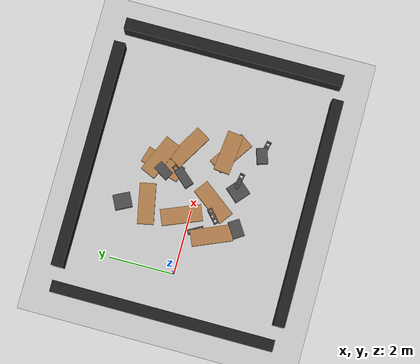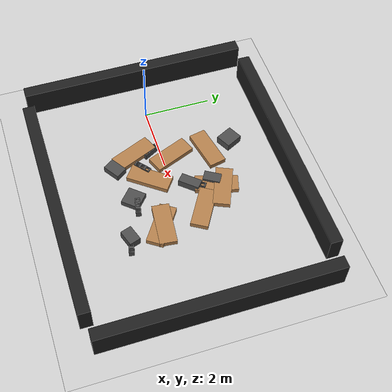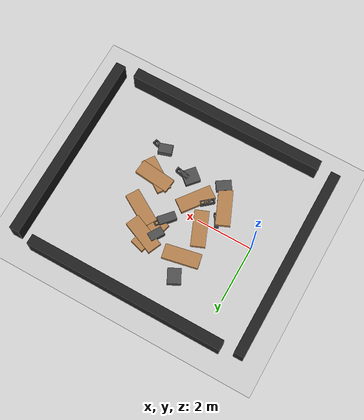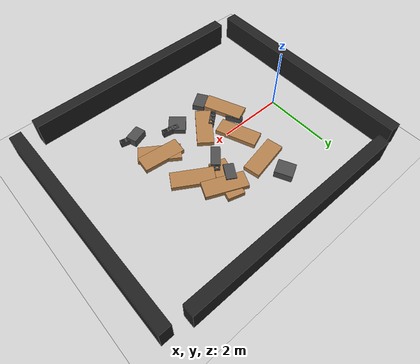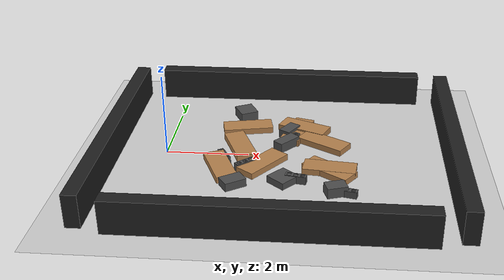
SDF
<sdf version="1.6">
 <world name="default">
  <plugin name="xbot2_clock" filename="libxbot2_gz_clock.so"/>
  <gravity>0 0 -9.81</gravity>
  <model name="ground_plane">
   <static>1</static>
   <link name="link">
    <collision name="collision">
     <geometry><plane><normal>0 0 1</normal><size>100 100</size></plane></geometry>
     <surface><friction><ode><mu>1</mu><mu2>1</mu2></ode></friction></surface>
    </collision>
    <visual name="visual">
     <cast_shadows>0</cast_shadows>
     <geometry><plane><normal>0 0 1</normal><size>100 100</size></plane></geometry>
     <material>
      <script><uri>file://media/materials/scripts/gazebo.material</uri><name>Gazebo/Grey</name></script>
     </material>
    </visual>
   </link>
  </model>
  <light name="sun" type="directional">
   <pose>0 0 10 0 -0 0</pose>
   <diffuse>0.8 0.8 0.8 1</diffuse>
   <specular>0.2 0.2 0.2 1</specular>
   <attenuation>
    <range>1000</range>
    <constant>0.9</constant>
    <linear>0.01</linear>
    <quadratic>0.001</quadratic>
   </attenuation>
   <direction>-0.5 0.1 -0.9</direction>
  </light>
  <physics name="update_rate" default="0" type="ode">
   <real_time_update_rate>4000</real_time_update_rate>
   <max_step_size>0.00025</max_step_size>
   <max_contacts>5</max_contacts>
   <bullet>
    <solver><iters>100</iters><sor>1.55</sor><type>sequential_impulse</type></solver>
    <constraints>
     <contact_surface_layer>0.2</contact_surface_layer>
     <cfm>0.005</cfm>
     <erp>0.2</erp>
     <split_impulse>1</split_impulse>
     <split_impulse_penetration_threshold>-0.01</split_impulse_penetration_threshold>
    </constraints>
   </bullet>
   <ode>
    <solver>
     <iters>50</iters>
     <sor>1.2</sor>
     <type>quick</type>
     <use_dynamic_moi_rescaling>0</use_dynamic_moi_rescaling>
    </solver>
    <constraints>
     <contact_surface_layer>0.0002</contact_surface_layer>
     <contact_max_correcting_vel>500</contact_max_correcting_vel>
     <cfm>1e-06</cfm>
     <erp>0.3</erp>
    </constraints>
   </ode>
   <real_time_factor>1</real_time_factor>
  </physics>
  <magnetic_field>6e-06 2.3e-05 -4.2e-05</magnetic_field>
  <atmosphere type="adiabatic"/>
  <scene><ambient>0.4 0.4 0.4 1</ambient><background>0.7 0.7 0.7 1</background><shadows>1</shadows></scene>
  <audio><device>default</device></audio>
  <spherical_coordinates>
   <surface_model>EARTH_WGS84</surface_model>
   <latitude_deg>0</latitude_deg>
   <longitude_deg>0</longitude_deg>
   <elevation>0</elevation>
   <heading_deg>0</heading_deg>
  </spherical_coordinates>
  <model name="box_0">
   <pose>4.150145 -1.636573 0.124217 0.000000 0.000000 0.321245</pose>
   <link name="link">
    <inertial>
     <mass>1000.000000</mass>
     <inertia>
      <ixx>166.700000</ixx>
      <ixy>0.000000</ixy>
      <ixz>0.000000</ixz>
      <iyy>166.700000</iyy>
      <iyz>0.000000</iyz>
      <izz>166.700000</izz>
     </inertia>
    </inertial>
    <collision name="collision">
     <geometry><box><size>0.478500 0.332304 0.248433</size></box></geometry>
     <surface>
      <friction>
       <ode><mu>0.62</mu><mu2>0.6</mu2></ode>
       <torsional><coefficient>1.0</coefficient></torsional>
      </friction>
     </surface>
    </collision>
    <visual name="visual">
     <geometry><box><size>0.478500 0.332304 0.248433</size></box></geometry>
     <material>
      <script><name>Gazebo/DarkGrey</name><uri>file://media/materials/scripts/gazebo.material</uri></script>
     </material>
    </visual>
   </link>
  </model>
  <model name="box_1">
   <pose>2.934864 -1.209582 0.085281 0.000000 0.000000 0.852751</pose>
   <link name="link">
    <inertial>
     <mass>1000.000000</mass>
     <inertia>
      <ixx>166.700000</ixx>
      <ixy>0.000000</ixy>
      <ixz>0.000000</ixz>
      <iyy>166.700000</iyy>
      <iyz>0.000000</iyz>
      <izz>166.700000</izz>
     </inertia>
    </inertial>
    <collision name="collision">
     <geometry><box><size>0.528707 0.519644 0.170561</size></box></geometry>
     <surface>
      <friction>
       <ode><mu>0.62</mu><mu2>0.6</mu2></ode>
       <torsional><coefficient>1.0</coefficient></torsional>
      </friction>
     </surface>
    </collision>
    <visual name="visual">
     <geometry><box><size>0.528707 0.519644 0.170561</size></box></geometry>
     <material>
      <script><name>Gazebo/DarkGrey</name><uri>file://media/materials/scripts/gazebo.material</uri></script>
     </material>
    </visual>
   </link>
  </model>
  <model name="woodplat1_2">
   <pose>1.421122 -0.775209 0.106567 0.000000 0.000000 -1.167873</pose>
   <link name="link">
    <inertial>
     <mass>10.0</mass>
     <inertia><ixx>1.6</ixx><ixy>0.0</ixy><ixz>0.0</ixz><iyy>1.6</iyy><iyz>0.0</iyz><izz>1.6</izz></inertia>
    </inertial>
    <collision name="collision">
     <geometry><mesh><uri>file://../config/meshes/WoodenPlatform1/WoodPlat1.dae</uri></mesh></geometry>
     <max_contacts>100</max_contacts>
     <surface>
      <friction>
       <ode><mu>0.62</mu><mu2>0.6</mu2></ode>
       <torsional><coefficient>1.0</coefficient></torsional>
      </friction>
     </surface>
    </collision>
    <visual name="visual">
     <geometry><mesh><uri>file://../config/meshes/WoodenPlatform1/WoodPlat1.dae</uri></mesh></geometry>
     <material>
      <script><name>Gazebo/Wood</name><uri>file://media/materials/scripts/gazebo.material</uri></script>
     </material>
    </visual>
   </link>
  </model>
  <model name="woodplat1_3">
   <pose>1.846619 1.360473 0.068954 0.000000 0.000000 0.199893</pose>
   <link name="link">
    <inertial>
     <mass>10.0</mass>
     <inertia><ixx>1.6</ixx><ixy>0.0</ixy><ixz>0.0</ixz><iyy>1.6</iyy><iyz>0.0</iyz><izz>1.6</izz></inertia>
    </inertial>
    <collision name="collision">
     <geometry><mesh><uri>file://../config/meshes/WoodenPlatform1/WoodPlat1.dae</uri></mesh></geometry>
     <max_contacts>100</max_contacts>
     <surface>
      <friction>
       <ode><mu>0.62</mu><mu2>0.6</mu2></ode>
       <torsional><coefficient>1.0</coefficient></torsional>
      </friction>
     </surface>
    </collision>
    <visual name="visual">
     <geometry><mesh><uri>file://../config/meshes/WoodenPlatform1/WoodPlat1.dae</uri></mesh></geometry>
     <material>
      <script><name>Gazebo/Wood</name><uri>file://media/materials/scripts/gazebo.material</uri></script>
     </material>
    </visual>
   </link>
  </model>
  <model name="woodplat1_4">
   <pose>3.310457 1.329164 0.109386 0.000000 0.000000 2.731208</pose>
   <link name="link">
    <inertial>
     <mass>10.0</mass>
     <inertia><ixx>1.6</ixx><ixy>0.0</ixy><ixz>0.0</ixz><iyy>1.6</iyy><iyz>0.0</iyz><izz>1.6</izz></inertia>
    </inertial>
    <collision name="collision">
     <geometry><mesh><uri>file://../config/meshes/WoodenPlatform1/WoodPlat1.dae</uri></mesh></geometry>
     <max_contacts>100</max_contacts>
     <surface>
      <friction>
       <ode><mu>0.62</mu><mu2>0.6</mu2></ode>
       <torsional><coefficient>1.0</coefficient></torsional>
      </friction>
     </surface>
    </collision>
    <visual name="visual">
     <geometry><mesh><uri>file://../config/meshes/WoodenPlatform1/WoodPlat1.dae</uri></mesh></geometry>
     <material>
      <script><name>Gazebo/Wood</name><uri>file://media/materials/scripts/gazebo.material</uri></script>
     </material>
    </visual>
   </link>
  </model>
  <model name="brick_5">
   <pose>3.229136 -1.168652 0.084488 0.000000 0.000000 -0.190246</pose>
   <link name="link">
    <inertial>
     <mass>15.0</mass>
     <inertia>
      <ixx>0.07565625</ixx>
      <ixy>0.0</ixy>
      <ixz>0.0</ixz>
      <iyy>0.340625</iyy>
      <iyz>0.0</iyz>
      <izz>0.33125</izz>
     </inertia>
    </inertial>
    <collision name="collision">
     <geometry><mesh><uri>file://../config/meshes/Brick/Brick.dae</uri></mesh></geometry>
     <max_contacts>100</max_contacts>
     <surface>
      <friction>
       <ode><mu>0.62</mu><mu2>0.6</mu2></ode>
       <torsional><coefficient>1.0</coefficient></torsional>
      </friction>
     </surface>
    </collision>
    <visual name="visual">
     <geometry><mesh><uri>file://../config/meshes/Brick/Brick.dae</uri></mesh></geometry>
     <material>
      <ambient>0.3 0.3 0.3 1</ambient>
      <diffuse>0.3 0.3 0.3 1</diffuse>
      <specular>0 0 0 0</specular>
      <emissive>0 0 0 1</emissive>
     </material>
    </visual>
   </link>
  </model>
  <model name="brick_6">
   <pose>4.390917 -1.684135 0.061883 0.000000 0.000000 -0.235101</pose>
   <link name="link">
    <inertial>
     <mass>15.0</mass>
     <inertia>
      <ixx>0.07565625</ixx>
      <ixy>0.0</ixy>
      <ixz>0.0</ixz>
      <iyy>0.340625</iyy>
      <iyz>0.0</iyz>
      <izz>0.33125</izz>
     </inertia>
    </inertial>
    <collision name="collision">
     <geometry><mesh><uri>file://../config/meshes/Brick/Brick.dae</uri></mesh></geometry>
     <max_contacts>100</max_contacts>
     <surface>
      <friction>
       <ode><mu>0.62</mu><mu2>0.6</mu2></ode>
       <torsional><coefficient>1.0</coefficient></torsional>
      </friction>
     </surface>
    </collision>
    <visual name="visual">
     <geometry><mesh><uri>file://../config/meshes/Brick/Brick.dae</uri></mesh></geometry>
     <material>
      <ambient>0.3 0.3 0.3 1</ambient>
      <diffuse>0.3 0.3 0.3 1</diffuse>
      <specular>0 0 0 0</specular>
      <emissive>0 0 0 1</emissive>
     </material>
    </visual>
   </link>
  </model>
  <model name="woodplat1_7">
   <pose>1.780660 0.255543 0.114311 0.000000 0.000000 1.957047</pose>
   <link name="link">
    <inertial>
     <mass>10.0</mass>
     <inertia><ixx>1.6</ixx><ixy>0.0</ixy><ixz>0.0</ixz><iyy>1.6</iyy><iyz>0.0</iyz><izz>1.6</izz></inertia>
    </inertial>
    <collision name="collision">
     <geometry><mesh><uri>file://../config/meshes/WoodenPlatform1/WoodPlat1.dae</uri></mesh></geometry>
     <max_contacts>100</max_contacts>
     <surface>
      <friction>
       <ode><mu>0.62</mu><mu2>0.6</mu2></ode>
       <torsional><coefficient>1.0</coefficient></torsional>
      </friction>
     </surface>
    </collision>
    <visual name="visual">
     <geometry><mesh><uri>file://../config/meshes/WoodenPlatform1/WoodPlat1.dae</uri></mesh></geometry>
     <material>
      <script><name>Gazebo/Wood</name><uri>file://media/materials/scripts/gazebo.material</uri></script>
     </material>
    </visual>
   </link>
  </model>
  <model name="brick_8">
   <pose>1.998257 -0.671141 0.119190 0.000000 0.000000 -2.432196</pose>
   <link name="link">
    <inertial>
     <mass>15.0</mass>
     <inertia>
      <ixx>0.07565625</ixx>
      <ixy>0.0</ixy>
      <ixz>0.0</ixz>
      <iyy>0.340625</iyy>
      <iyz>0.0</iyz>
      <izz>0.33125</izz>
     </inertia>
    </inertial>
    <collision name="collision">
     <geometry><mesh><uri>file://../config/meshes/Brick/Brick.dae</uri></mesh></geometry>
     <max_contacts>100</max_contacts>
     <surface>
      <friction>
       <ode><mu>0.62</mu><mu2>0.6</mu2></ode>
       <torsional><coefficient>1.0</coefficient></torsional>
      </friction>
     </surface>
    </collision>
    <visual name="visual">
     <geometry><mesh><uri>file://../config/meshes/Brick/Brick.dae</uri></mesh></geometry>
     <material>
      <ambient>0.3 0.3 0.3 1</ambient>
      <diffuse>0.3 0.3 0.3 1</diffuse>
      <specular>0 0 0 0</specular>
      <emissive>0 0 0 1</emissive>
     </material>
    </visual>
   </link>
  </model>
  <model name="box_9">
   <pose>2.898125 0.483056 0.118867 0.000000 0.000000 -2.292877</pose>
   <link name="link">
    <inertial>
     <mass>1000.000000</mass>
     <inertia>
      <ixx>166.700000</ixx>
      <ixy>0.000000</ixy>
      <ixz>0.000000</ixz>
      <iyy>166.700000</iyy>
      <iyz>0.000000</iyz>
      <izz>166.700000</izz>
     </inertia>
    </inertial>
    <collision name="collision">
     <geometry><box><size>0.617238 0.284780 0.237734</size></box></geometry>
     <surface>
      <friction>
       <ode><mu>0.62</mu><mu2>0.6</mu2></ode>
       <torsional><coefficient>1.0</coefficient></torsional>
      </friction>
     </surface>
    </collision>
    <visual name="visual">
     <geometry><box><size>0.617238 0.284780 0.237734</size></box></geometry>
     <material>
      <script><name>Gazebo/DarkGrey</name><uri>file://media/materials/scripts/gazebo.material</uri></script>
     </material>
    </visual>
   </link>
  </model>
  <model name="box_10">
   <pose>1.725070 2.082783 0.121384 0.000000 0.000000 -1.104887</pose>
   <link name="link">
    <inertial>
     <mass>1000.000000</mass>
     <inertia>
      <ixx>166.700000</ixx>
      <ixy>0.000000</ixy>
      <ixz>0.000000</ixz>
      <iyy>166.700000</iyy>
      <iyz>0.000000</iyz>
      <izz>166.700000</izz>
     </inertia>
    </inertial>
    <collision name="collision">
     <geometry><box><size>0.524165 0.458318 0.242769</size></box></geometry>
     <surface>
      <friction>
       <ode><mu>0.62</mu><mu2>0.6</mu2></ode>
       <torsional><coefficient>1.0</coefficient></torsional>
      </friction>
     </surface>
    </collision>
    <visual name="visual">
     <geometry><box><size>0.524165 0.458318 0.242769</size></box></geometry>
     <material>
      <script><name>Gazebo/DarkGrey</name><uri>file://media/materials/scripts/gazebo.material</uri></script>
     </material>
    </visual>
   </link>
  </model>
  <model name="woodplat1_11">
   <pose>3.990747 -0.705347 0.064492 0.000000 0.000000 -0.600102</pose>
   <link name="link">
    <inertial>
     <mass>10.0</mass>
     <inertia><ixx>1.6</ixx><ixy>0.0</ixy><ixz>0.0</ixz><iyy>1.6</iyy><iyz>0.0</iyz><izz>1.6</izz></inertia>
    </inertial>
    <collision name="collision">
     <geometry><mesh><uri>file://../config/meshes/WoodenPlatform1/WoodPlat1.dae</uri></mesh></geometry>
     <max_contacts>100</max_contacts>
     <surface>
      <friction>
       <ode><mu>0.62</mu><mu2>0.6</mu2></ode>
       <torsional><coefficient>1.0</coefficient></torsional>
      </friction>
     </surface>
    </collision>
    <visual name="visual">
     <geometry><mesh><uri>file://../config/meshes/WoodenPlatform1/WoodPlat1.dae</uri></mesh></geometry>
     <material>
      <script><name>Gazebo/Wood</name><uri>file://media/materials/scripts/gazebo.material</uri></script>
     </material>
    </visual>
   </link>
  </model>
  <model name="brick_12">
   <pose>1.447599 -0.275942 0.081261 0.000000 0.000000 -1.059388</pose>
   <link name="link">
    <inertial>
     <mass>15.0</mass>
     <inertia>
      <ixx>0.07565625</ixx>
      <ixy>0.0</ixy>
      <ixz>0.0</ixz>
      <iyy>0.340625</iyy>
      <iyz>0.0</iyz>
      <izz>0.33125</izz>
     </inertia>
    </inertial>
    <collision name="collision">
     <geometry><mesh><uri>file://../config/meshes/Brick/Brick.dae</uri></mesh></geometry>
     <max_contacts>100</max_contacts>
     <surface>
      <friction>
       <ode><mu>0.62</mu><mu2>0.6</mu2></ode>
       <torsional><coefficient>1.0</coefficient></torsional>
      </friction>
     </surface>
    </collision>
    <visual name="visual">
     <geometry><mesh><uri>file://../config/meshes/Brick/Brick.dae</uri></mesh></geometry>
     <material>
      <ambient>0.3 0.3 0.3 1</ambient>
      <diffuse>0.3 0.3 0.3 1</diffuse>
      <specular>0 0 0 0</specular>
      <emissive>0 0 0 1</emissive>
     </material>
    </visual>
   </link>
  </model>
  <model name="brick_13">
   <pose>3.018096 0.655456 0.116717 0.000000 0.000000 0.970962</pose>
   <link name="link">
    <inertial>
     <mass>15.0</mass>
     <inertia>
      <ixx>0.07565625</ixx>
      <ixy>0.0</ixy>
      <ixz>0.0</ixz>
      <iyy>0.340625</iyy>
      <iyz>0.0</iyz>
      <izz>0.33125</izz>
     </inertia>
    </inertial>
    <collision name="collision">
     <geometry><mesh><uri>file://../config/meshes/Brick/Brick.dae</uri></mesh></geometry>
     <max_contacts>100</max_contacts>
     <surface>
      <friction>
       <ode><mu>0.62</mu><mu2>0.6</mu2></ode>
       <torsional><coefficient>1.0</coefficient></torsional>
      </friction>
     </surface>
    </collision>
    <visual name="visual">
     <geometry><mesh><uri>file://../config/meshes/Brick/Brick.dae</uri></mesh></geometry>
     <material>
      <ambient>0.3 0.3 0.3 1</ambient>
      <diffuse>0.3 0.3 0.3 1</diffuse>
      <specular>0 0 0 0</specular>
      <emissive>0 0 0 1</emissive>
     </material>
    </visual>
   </link>
  </model>
  <model name="box_14">
   <pose>2.941777 1.132242 0.110752 0.000000 0.000000 2.596280</pose>
   <link name="link">
    <inertial>
     <mass>1000.000000</mass>
     <inertia>
      <ixx>166.700000</ixx>
      <ixy>0.000000</ixy>
      <ixz>0.000000</ixz>
      <iyy>166.700000</iyy>
      <iyz>0.000000</iyz>
      <izz>166.700000</izz>
     </inertia>
    </inertial>
    <collision name="collision">
     <geometry><box><size>0.299707 0.502530 0.221503</size></box></geometry>
     <surface>
      <friction>
       <ode><mu>0.62</mu><mu2>0.6</mu2></ode>
       <torsional><coefficient>1.0</coefficient></torsional>
      </friction>
     </surface>
    </collision>
    <visual name="visual">
     <geometry><box><size>0.299707 0.502530 0.221503</size></box></geometry>
     <material>
      <script><name>Gazebo/DarkGrey</name><uri>file://media/materials/scripts/gazebo.material</uri></script>
     </material>
    </visual>
   </link>
  </model>
  <model name="woodplat1_15">
   <pose>2.400643 -0.574593 0.112642 0.000000 0.000000 -2.218489</pose>
   <link name="link">
    <inertial>
     <mass>10.0</mass>
     <inertia><ixx>1.6</ixx><ixy>0.0</ixy><ixz>0.0</ixz><iyy>1.6</iyy><iyz>0.0</iyz><izz>1.6</izz></inertia>
    </inertial>
    <collision name="collision">
     <geometry><mesh><uri>file://../config/meshes/WoodenPlatform1/WoodPlat1.dae</uri></mesh></geometry>
     <max_contacts>100</max_contacts>
     <surface>
      <friction>
       <ode><mu>0.62</mu><mu2>0.6</mu2></ode>
       <torsional><coefficient>1.0</coefficient></torsional>
      </friction>
     </surface>
    </collision>
    <visual name="visual">
     <geometry><mesh><uri>file://../config/meshes/WoodenPlatform1/WoodPlat1.dae</uri></mesh></geometry>
     <material>
      <script><name>Gazebo/Wood</name><uri>file://media/materials/scripts/gazebo.material</uri></script>
     </material>
    </visual>
   </link>
  </model>
  <model name="woodplat1_16">
   <pose>3.998060 -0.628294 0.064654 0.000000 0.000000 -0.105984</pose>
   <link name="link">
    <inertial>
     <mass>10.0</mass>
     <inertia><ixx>1.6</ixx><ixy>0.0</ixy><ixz>0.0</ixz><iyy>1.6</iyy><iyz>0.0</iyz><izz>1.6</izz></inertia>
    </inertial>
    <collision name="collision">
     <geometry><mesh><uri>file://../config/meshes/WoodenPlatform1/WoodPlat1.dae</uri></mesh></geometry>
     <max_contacts>100</max_contacts>
     <surface>
      <friction>
       <ode><mu>0.62</mu><mu2>0.6</mu2></ode>
       <torsional><coefficient>1.0</coefficient></torsional>
      </friction>
     </surface>
    </collision>
    <visual name="visual">
     <geometry><mesh><uri>file://../config/meshes/WoodenPlatform1/WoodPlat1.dae</uri></mesh></geometry>
     <material>
      <script><name>Gazebo/Wood</name><uri>file://media/materials/scripts/gazebo.material</uri></script>
     </material>
    </visual>
   </link>
  </model>
  <model name="box_17">
   <pose>1.801809 -1.448580 0.100905 0.000000 0.000000 -0.993594</pose>
   <link name="link">
    <inertial>
     <mass>1000.000000</mass>
     <inertia>
      <ixx>166.700000</ixx>
      <ixy>0.000000</ixy>
      <ixz>0.000000</ixz>
      <iyy>166.700000</iyy>
      <iyz>0.000000</iyz>
      <izz>166.700000</izz>
     </inertia>
    </inertial>
    <collision name="collision">
     <geometry><box><size>0.359228 0.530761 0.201809</size></box></geometry>
     <surface>
      <friction>
       <ode><mu>0.62</mu><mu2>0.6</mu2></ode>
       <torsional><coefficient>1.0</coefficient></torsional>
      </friction>
     </surface>
    </collision>
    <visual name="visual">
     <geometry><box><size>0.359228 0.530761 0.201809</size></box></geometry>
     <material>
      <script><name>Gazebo/DarkGrey</name><uri>file://media/materials/scripts/gazebo.material</uri></script>
     </material>
    </visual>
   </link>
  </model>
  <model name="woodplat1_18">
   <pose>3.130725 1.201247 0.071335 0.000000 0.000000 1.288286</pose>
   <link name="link">
    <inertial>
     <mass>10.0</mass>
     <inertia><ixx>1.6</ixx><ixy>0.0</ixy><ixz>0.0</ixz><iyy>1.6</iyy><iyz>0.0</iyz><izz>1.6</izz></inertia>
    </inertial>
    <collision name="collision">
     <geometry><mesh><uri>file://../config/meshes/WoodenPlatform1/WoodPlat1.dae</uri></mesh></geometry>
     <max_contacts>100</max_contacts>
     <surface>
      <friction>
       <ode><mu>0.62</mu><mu2>0.6</mu2></ode>
       <torsional><coefficient>1.0</coefficient></torsional>
      </friction>
     </surface>
    </collision>
    <visual name="visual">
     <geometry><mesh><uri>file://../config/meshes/WoodenPlatform1/WoodPlat1.dae</uri></mesh></geometry>
     <material>
      <script><name>Gazebo/Wood</name><uri>file://media/materials/scripts/gazebo.material</uri></script>
     </material>
    </visual>
   </link>
  </model>
  <model name="woodplat1_19">
   <pose>3.824927 0.585374 0.100988 0.000000 0.000000 2.599209</pose>
   <link name="link">
    <inertial>
     <mass>10.0</mass>
     <inertia><ixx>1.6</ixx><ixy>0.0</ixy><ixz>0.0</ixz><iyy>1.6</iyy><iyz>0.0</iyz><izz>1.6</izz></inertia>
    </inertial>
    <collision name="collision">
     <geometry><mesh><uri>file://../config/meshes/WoodenPlatform1/WoodPlat1.dae</uri></mesh></geometry>
     <max_contacts>100</max_contacts>
     <surface>
      <friction>
       <ode><mu>0.62</mu><mu2>0.6</mu2></ode>
       <torsional><coefficient>1.0</coefficient></torsional>
      </friction>
     </surface>
    </collision>
    <visual name="visual">
     <geometry><mesh><uri>file://../config/meshes/WoodenPlatform1/WoodPlat1.dae</uri></mesh></geometry>
     <material>
      <script><name>Gazebo/Wood</name><uri>file://media/materials/scripts/gazebo.material</uri></script>
     </material>
    </visual>
   </link>
  </model>
  <model name="wall_0">
   <pose>-1.300000 0.000000 0.4 0 0 0.000000</pose>
   <link name="link">
    <inertial>
     <mass>10000.0</mass>
     <inertia><ixx>166.7</ixx><ixy>0</ixy><ixz>0</ixz><iyy>166.7</iyy><iyz>0</iyz><izz>166.7</izz></inertia>
    </inertial>
    <collision name="collision">
     <geometry><box><size>0.350000 6.800000 0.8</size></box></geometry>
     <surface>
      <friction>
       <ode><mu>0.62</mu><mu2>0.6</mu2></ode>
       <torsional><coefficient>1.0</coefficient></torsional>
      </friction>
     </surface>
    </collision>
    <visual name="visual">
     <geometry><box><size>0.350000 6.800000 0.8</size></box></geometry>
     <material>
      <script><name>Gazebo/FlatBlack</name><uri>file://media/materials/scripts/gazebo.material</uri></script>
     </material>
    </visual>
   </link>
  </model>
  <model name="wall_1">
   <pose>6.900000 0.000000 0.4 0 0 0.000000</pose>
   <link name="link">
    <inertial>
     <mass>10000.0</mass>
     <inertia><ixx>166.7</ixx><ixy>0</ixy><ixz>0</ixz><iyy>166.7</iyy><iyz>0</iyz><izz>166.7</izz></inertia>
    </inertial>
    <collision name="collision">
     <geometry><box><size>0.350000 6.800000 0.8</size></box></geometry>
     <surface>
      <friction>
       <ode><mu>0.62</mu><mu2>0.6</mu2></ode>
       <torsional><coefficient>1.0</coefficient></torsional>
      </friction>
     </surface>
    </collision>
    <visual name="visual">
     <geometry><box><size>0.350000 6.800000 0.8</size></box></geometry>
     <material>
      <script><name>Gazebo/FlatBlack</name><uri>file://media/materials/scripts/gazebo.material</uri></script>
     </material>
    </visual>
   </link>
  </model>
  <model name="wall_2">
   <pose>2.800000 -3.400000 0.4 0 0 0.000000</pose>
   <link name="link">
    <inertial>
     <mass>10000.0</mass>
     <inertia><ixx>166.7</ixx><ixy>0</ixy><ixz>0</ixz><iyy>166.7</iyy><iyz>0</iyz><izz>166.7</izz></inertia>
    </inertial>
    <collision name="collision">
     <geometry><box><size>7.000000 0.350000 0.8</size></box></geometry>
     <surface>
      <friction>
       <ode><mu>0.62</mu><mu2>0.6</mu2></ode>
       <torsional><coefficient>1.0</coefficient></torsional>
      </friction>
     </surface>
    </collision>
    <visual name="visual">
     <geometry><box><size>7.000000 0.350000 0.8</size></box></geometry>
     <material>
      <script><name>Gazebo/FlatBlack</name><uri>file://media/materials/scripts/gazebo.material</uri></script>
     </material>
    </visual>
   </link>
  </model>
  <model name="wall_3">
   <pose>2.800000 3.400000 0.4 0 0 0.000000</pose>
   <link name="link">
    <inertial>
     <mass>10000.0</mass>
     <inertia><ixx>166.7</ixx><ixy>0</ixy><ixz>0</ixz><iyy>166.7</iyy><iyz>0</iyz><izz>166.7</izz></inertia>
    </inertial>
    <collision name="collision">
     <geometry><box><size>7.000000 0.350000 0.8</size></box></geometry>
     <surface>
      <friction>
       <ode><mu>0.62</mu><mu2>0.6</mu2></ode>
       <torsional><coefficient>1.0</coefficient></torsional>
      </friction>
     </surface>
    </collision>
    <visual name="visual">
     <geometry><box><size>7.000000 0.350000 0.8</size></box></geometry>
     <material>
      <script><name>Gazebo/FlatBlack</name><uri>file://media/materials/scripts/gazebo.material</uri></script>
     </material>
    </visual>
   </link>
  </model>
 </world>
</sdf>
